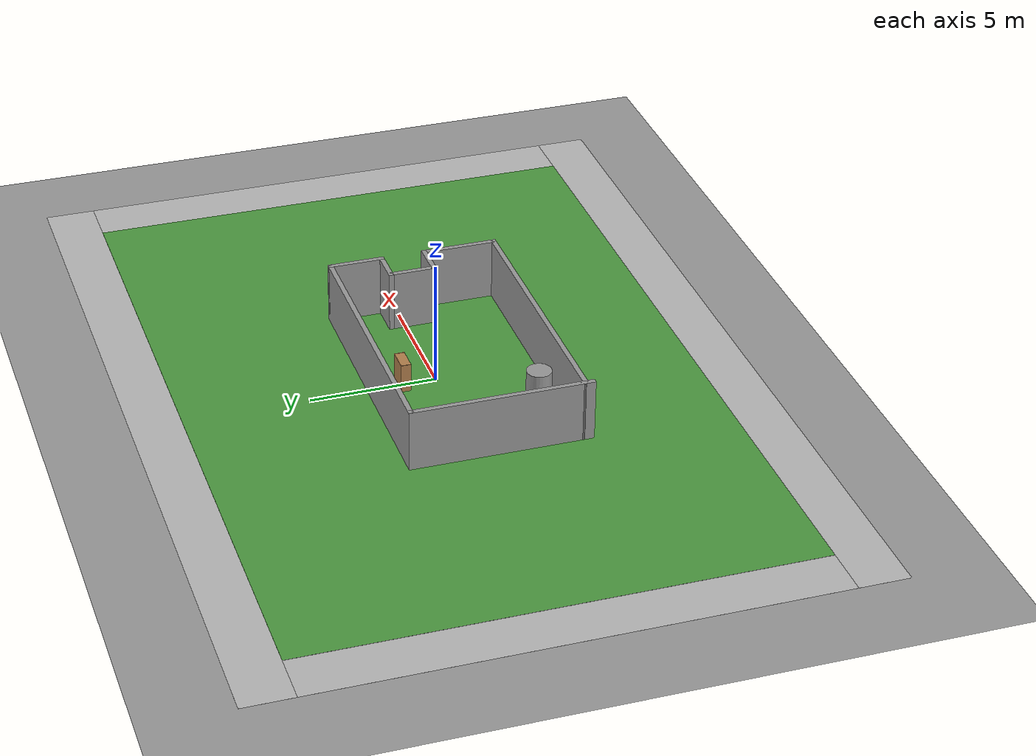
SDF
<sdf version="1.4">
 <world name="default">
  <light name="sun" type="directional">
   <pose>0 0 10 0 -0 0</pose>
   <diffuse>0.8 0.8 0.8 1</diffuse>
   <specular>0.2 0.2 0.2 1</specular>
   <attenuation>
    <range>1000</range>
    <constant>0.9</constant>
    <linear>0.01</linear>
    <quadratic>0.001</quadratic>
   </attenuation>
   <direction>0.5 0.1 -0.9</direction>
  </light>
  <scene><ambient>0.4 0.4 0.4 1</ambient><background>0.7 0.7 0.7 1</background><shadows>1</shadows></scene>
  <physics type="ode">
   <max_step_size>0.01</max_step_size>
   <real_time_factor>1</real_time_factor>
   <real_time_update_rate>100</real_time_update_rate>
   <gravity>0 0 -9.8</gravity>
  </physics>
  <model name="bookshelf">
   <static>1</static>
   <link name="link">
    <inertial><mass>1</mass></inertial>
    <collision name="back">
     <pose>0 0.005 0.6 0 -0 0</pose>
     <geometry><box><size>0.9 0.01 1.2</size></box></geometry>
    </collision>
    <visual name="visual1">
     <pose>0 0.005 0.6 0 -0 0</pose>
     <geometry><box><size>0.9 0.01 1.2</size></box></geometry>
     <material>
      <script><uri>file://media/materials/scripts/gazebo.material</uri><name>Gazebo/Wood</name></script>
     </material>
    </visual>
    <collision name="left_side">
     <pose>0.45 -0.195 0.6 0 -0 0</pose>
     <geometry><box><size>0.02 0.4 1.2</size></box></geometry>
    </collision>
    <visual name="visual2">
     <pose>0.45 -0.195 0.6 0 -0 0</pose>
     <geometry><box><size>0.02 0.4 1.2</size></box></geometry>
     <material>
      <script><uri>file://media/materials/scripts/gazebo.material</uri><name>Gazebo/Wood</name></script>
     </material>
    </visual>
    <collision name="right_side">
     <pose>-0.45 -0.195 0.6 0 -0 0</pose>
     <geometry><box><size>0.02 0.4 1.2</size></box></geometry>
    </collision>
    <visual name="visual3">
     <pose>-0.45 -0.195 0.6 0 -0 0</pose>
     <geometry><box><size>0.02 0.4 1.2</size></box></geometry>
     <material>
      <script><uri>file://media/materials/scripts/gazebo.material</uri><name>Gazebo/Wood</name></script>
     </material>
    </visual>
    <collision name="bottom">
     <pose>0 -0.195 0.03 0 -0 0</pose>
     <geometry><box><size>0.88 0.4 0.06</size></box></geometry>
    </collision>
    <visual name="visual4">
     <pose>0 -0.195 0.03 0 -0 0</pose>
     <geometry><box><size>0.88 0.4 0.06</size></box></geometry>
     <material>
      <script><uri>file://media/materials/scripts/gazebo.material</uri><name>Gazebo/Wood</name></script>
     </material>
    </visual>
    <collision name="top">
     <pose>0 -0.195 1.19 0 -0 0</pose>
     <geometry><box><size>0.88 0.4 0.02</size></box></geometry>
    </collision>
    <visual name="visual5">
     <pose>0 -0.195 1.19 0 -0 0</pose>
     <geometry><box><size>0.88 0.4 0.02</size></box></geometry>
     <material>
      <script><uri>file://media/materials/scripts/gazebo.material</uri><name>Gazebo/Wood</name></script>
     </material>
    </visual>
    <collision name="low_shelf">
     <pose>0 -0.195 0.43 0 -0 0</pose>
     <geometry><box><size>0.88 0.4 0.02</size></box></geometry>
    </collision>
    <visual name="visual6">
     <pose>0 -0.195 0.43 0 -0 0</pose>
     <geometry><box><size>0.88 0.4 0.02</size></box></geometry>
     <material>
      <script><uri>file://media/materials/scripts/gazebo.material</uri><name>Gazebo/Wood</name></script>
     </material>
    </visual>
    <collision name="high_shelf">
     <pose>0 -0.195 0.8 0 -0 0</pose>
     <geometry><box><size>0.88 0.4 0.02</size></box></geometry>
    </collision>
    <visual name="visual7">
     <pose>0 -0.195 0.8 0 -0 0</pose>
     <geometry><box><size>0.88 0.4 0.02</size></box></geometry>
     <material>
      <script><uri>file://media/materials/scripts/gazebo.material</uri><name>Gazebo/Wood</name></script>
     </material>
    </visual>
    <velocity_decay><linear>0</linear><angular>0</angular></velocity_decay>
   </link>
   <pose>0 1.53026 0 0 -0 0</pose>
  </model>
  <model name="ground_plane_0">
   <static>1</static>
   <link name="link">
    <collision name="collision">
     <geometry><plane><normal>0 0 1</normal><size>100 100</size></plane></geometry>
     <surface><friction><ode><mu>100</mu><mu2>50</mu2></ode></friction></surface>
    </collision>
    <visual name="visual">
     <cast_shadows>0</cast_shadows>
     <geometry><plane><normal>0 0 1</normal><size>100 100</size></plane></geometry>
     <material>
      <script><uri>file://media/materials/scripts/gazebo.material</uri><name>Gazebo/Grey</name></script>
     </material>
    </visual>
    <velocity_decay><linear>0</linear><angular>0</angular></velocity_decay>
   </link>
   <pose>0.497681 0 0 0 -0 0</pose>
  </model>
  <model name="unit_cylinder_1">
   <pose>-2 -3.4888 0.5 0 -0 0</pose>
   <link name="link">
    <inertial>
     <mass>1</mass>
     <inertia><ixx>1</ixx><ixy>0</ixy><ixz>0</ixz><iyy>1</iyy><iyz>0</iyz><izz>1</izz></inertia>
    </inertial>
    <collision name="collision">
     <geometry><cylinder><radius>0.5</radius><length>1</length></cylinder></geometry>
    </collision>
    <visual name="visual">
     <geometry><cylinder><radius>0.5</radius><length>1</length></cylinder></geometry>
     <material>
      <script><uri>file://media/materials/scripts/gazebo.material</uri><name>Gazebo/Grey</name></script>
     </material>
    </visual>
    <velocity_decay><linear>0</linear><angular>0</angular></velocity_decay>
   </link>
   <static>0</static>
  </model>
  <model name="BuildingDefaultName">
   <link name="Wall_1">
    <collision name="Wall_1_Collision">
     <geometry><box><size>7.20883 0.2 2.5</size></box></geometry>
     <pose>0 0 1.25 0 -0 0</pose>
    </collision>
    <visual name="Wall_1_Visual">
     <pose>0 0 1.25 0 -0 0</pose>
     <geometry><box><size>7.20883 0.2 2.5</size></box></geometry>
     <material>
      <script><uri>file://media/materials/scripts/gazebo.material</uri><name>Gazebo/Grey</name></script>
     </material>
    </visual>
    <velocity_decay><linear>0</linear><angular>0</angular></velocity_decay>
    <pose>-5.47922 -0.840698 0 0 -0 1.5708</pose>
   </link>
   <link name="Wall_2">
    <collision name="Wall_2_Collision">
     <geometry><box><size>11.1145 0.2 2.5</size></box></geometry>
     <pose>0 0 1.25 0 -0 0</pose>
    </collision>
    <visual name="Wall_2_Visual">
     <pose>0 0 1.25 0 -0 0</pose>
     <geometry><box><size>11.1145 0.2 2.5</size></box></geometry>
     <material>
      <script><uri>file://media/materials/scripts/gazebo.material</uri><name>Gazebo/Grey</name></script>
     </material>
    </visual>
    <velocity_decay><linear>0</linear><angular>0</angular></velocity_decay>
    <pose>-0.02196 2.66372 0 0 -0 0</pose>
   </link>
   <link name="Wall_3">
    <collision name="Wall_3_Collision">
     <geometry><box><size>2.2866 0.2 2.5</size></box></geometry>
     <pose>0 0 1.25 0 -0 0</pose>
    </collision>
    <visual name="Wall_3_Visual">
     <pose>0 0 1.25 0 -0 0</pose>
     <geometry><box><size>2.2866 0.2 2.5</size></box></geometry>
     <material>
      <script><uri>file://media/materials/scripts/gazebo.material</uri><name>Gazebo/Grey</name></script>
     </material>
    </visual>
    <velocity_decay><linear>0</linear><angular>0</angular></velocity_decay>
    <pose>5.43529 1.62042 0 0 0 -1.5708</pose>
   </link>
   <link name="Wall_4">
    <collision name="Wall_4_Collision">
     <geometry><box><size>1.48406 0.2 2.5</size></box></geometry>
     <pose>0 0 1.25 0 -0 0</pose>
    </collision>
    <visual name="Wall_4_Visual">
     <pose>0 0 1.25 0 -0 0</pose>
     <geometry><box><size>1.48406 0.2 2.5</size></box></geometry>
     <material>
      <script><uri>file://media/materials/scripts/gazebo.material</uri><name>Gazebo/Grey</name></script>
     </material>
    </visual>
    <velocity_decay><linear>0</linear><angular>0</angular></velocity_decay>
    <pose>4.79326 0.577119 0 0 -0 3.14159</pose>
   </link>
   <link name="Wall_5">
    <collision name="Wall_5_Collision">
     <geometry><box><size>1.96558 0.2 2.5</size></box></geometry>
     <pose>0 0 1.25 0 -0 0</pose>
    </collision>
    <visual name="Wall_5_Visual">
     <pose>0 0 1.25 0 -0 0</pose>
     <geometry><box><size>1.96558 0.2 2.5</size></box></geometry>
     <material>
      <script><uri>file://media/materials/scripts/gazebo.material</uri><name>Gazebo/Grey</name></script>
     </material>
    </visual>
    <velocity_decay><linear>0</linear><angular>0</angular></velocity_decay>
    <pose>4.15123 -0.305673 0 0 0 -1.5708</pose>
   </link>
   <link name="Wall_6">
    <collision name="Wall_6_Collision">
     <geometry><box><size>1.48406 0.2 2.5</size></box></geometry>
     <pose>0 0 1.25 0 -0 0</pose>
    </collision>
    <visual name="Wall_6_Visual">
     <pose>0 0 1.25 0 -0 0</pose>
     <geometry><box><size>1.48406 0.2 2.5</size></box></geometry>
     <material>
      <script><uri>file://media/materials/scripts/gazebo.material</uri><name>Gazebo/Grey</name></script>
     </material>
    </visual>
    <velocity_decay><linear>0</linear><angular>0</angular></velocity_decay>
    <pose>4.79326 -1.18846 0 0 -0 0</pose>
   </link>
   <link name="Wall_7">
    <collision name="Wall_7_Collision">
     <geometry><box><size>3.08914 0.2 2.5</size></box></geometry>
     <pose>0 0 1.25 0 -0 0</pose>
    </collision>
    <visual name="Wall_7_Visual">
     <pose>0 0 1.25 0 -0 0</pose>
     <geometry><box><size>3.08914 0.2 2.5</size></box></geometry>
     <material>
      <script><uri>file://media/materials/scripts/gazebo.material</uri><name>Gazebo/Grey</name></script>
     </material>
    </visual>
    <velocity_decay><linear>0</linear><angular>0</angular></velocity_decay>
    <pose>5.43529 -2.63303 0 0 0 -1.5708</pose>
   </link>
   <link name="Wall_8">
    <collision name="Wall_8_Collision">
     <geometry><box><size>11.061 0.2 2.5</size></box></geometry>
     <pose>0 0 1.25 0 -0 0</pose>
    </collision>
    <visual name="Wall_8_Visual">
     <pose>0 0 1.25 0 -0 0</pose>
     <geometry><box><size>11.061 0.2 2.5</size></box></geometry>
     <material>
      <script><uri>file://media/materials/scripts/gazebo.material</uri><name>Gazebo/Grey</name></script>
     </material>
    </visual>
    <velocity_decay><linear>0</linear><angular>0</angular></velocity_decay>
    <pose>0.004791 -4.0776 0 0 -0 3.14159</pose>
   </link>
   <link name="Wall_9">
    <collision name="Wall_9_Collision">
     <geometry><box><size>0.275664 0.2 2.5</size></box></geometry>
     <pose>0 0 1.25 0 -0 0</pose>
    </collision>
    <visual name="Wall_9_Visual">
     <pose>0 0 1.25 0 -0 0</pose>
     <geometry><box><size>0.275664 0.2 2.5</size></box></geometry>
     <material>
      <script><uri>file://media/materials/scripts/gazebo.material</uri><name>Gazebo/Grey</name></script>
     </material>
    </visual>
    <velocity_decay><linear>0</linear><angular>0</angular></velocity_decay>
    <pose>-5.45246 -4.05085 0 0 -0 2.35619</pose>
   </link>
   <static>1</static>
  </model>
  <model name="RoboCup 3D Simulation Field">
   <static>1</static>
   <link name="field">
    <pose>0 0 0.01 0 -0 0</pose>
    <collision name="collision">
     <geometry><plane><normal>0 0 1</normal><size>30 20</size></plane></geometry>
     <surface><friction><ode><mu>100</mu><mu2>50</mu2></ode></friction></surface>
    </collision>
    <visual name="base1">
     <pose>0 11 0.001 0 -0 0</pose>
     <cast_shadows>0</cast_shadows>
     <geometry><plane><normal>0 0 1</normal><size>34 2</size></plane></geometry>
     <material>
      <script>
       <uri>model://robocup_3Dsim_field/materials/scripts/</uri>
       <uri>model://robocup_3Dsim_field/materials/textures/</uri>
       <name>RoboCup/FieldBorder</name>
      </script>
     </material>
    </visual>
    <visual name="base2">
     <pose>0 -11 0.001 0 -0 0</pose>
     <cast_shadows>0</cast_shadows>
     <geometry><plane><normal>0 0 1</normal><size>34 2</size></plane></geometry>
     <material>
      <script>
       <uri>model://robocup_3Dsim_field/materials/scripts/</uri>
       <uri>model://robocup_3Dsim_field/materials/textures/</uri>
       <name>RoboCup/FieldBorder</name>
      </script>
     </material>
    </visual>
    <visual name="base3">
     <pose>16 0 0.001 0 -0 0</pose>
     <cast_shadows>0</cast_shadows>
     <geometry><plane><normal>0 0 1</normal><size>2 20</size></plane></geometry>
     <material>
      <script>
       <uri>model://robocup_3Dsim_field/materials/scripts/</uri>
       <uri>model://robocup_3Dsim_field/materials/textures/</uri>
       <name>RoboCup/FieldBorder</name>
      </script>
     </material>
    </visual>
    <visual name="base4">
     <pose>-16 0 0.001 0 -0 0</pose>
     <cast_shadows>0</cast_shadows>
     <geometry><plane><normal>0 0 1</normal><size>2 20</size></plane></geometry>
     <material>
      <script>
       <uri>model://robocup_3Dsim_field/materials/scripts/</uri>
       <uri>model://robocup_3Dsim_field/materials/textures/</uri>
       <name>RoboCup/FieldBorder</name>
      </script>
     </material>
    </visual>
    <visual name="carpet">
     <cast_shadows>0</cast_shadows>
     <geometry><plane><normal>0 0 1</normal><size>30 20</size></plane></geometry>
     <material>
      <script>
       <uri>model://robocup_3Dsim_field/materials/scripts/</uri>
       <uri>model://robocup_3Dsim_field/materials/textures/</uri>
       <name>RoboCup/Grass</name>
      </script>
     </material>
    </visual>
    <velocity_decay><linear>0</linear><angular>0</angular></velocity_decay>
   </link>
  </model>
 </world>
</sdf>
